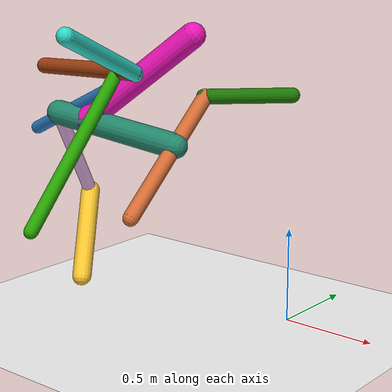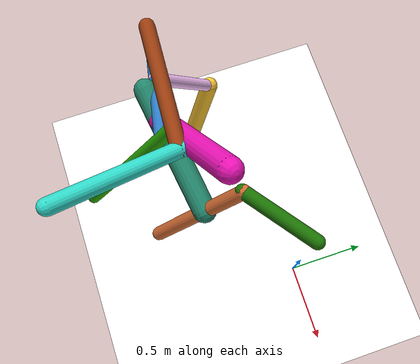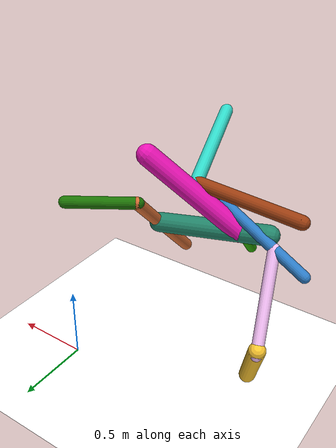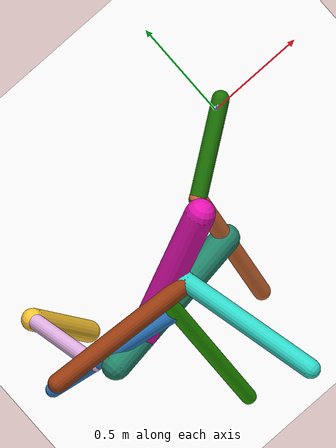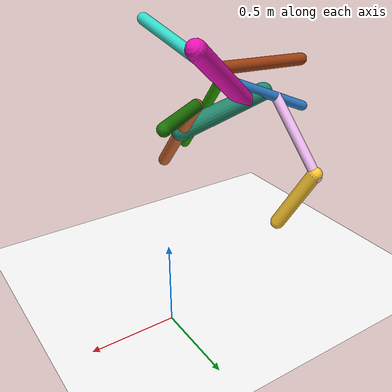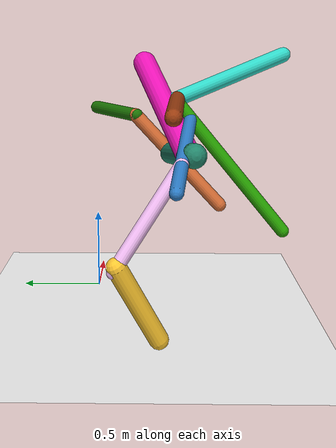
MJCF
<mujoco model="morphology">
  <option timestep="0.01"/>
  <default>
    <default class="/"/>
    <default class="0/"/>
    <default class="0/1/"/>
    <default class="0/1/2/"/>
    <default class="0/1/2/3/"/>
    <default class="0/1/2/3/4/"/>
    <default class="0/1/2/3/4/5/"/>
    <default class="0/1/2/3/4/5/6/"/>
    <default class="0/1/2/3/4/5/6/7/"/>
    <default class="0/1/2/3/4/5/6/7/8/"/>
    <default class="0/1/2/3/4/5/6/7/8/9/"/>
  </default>
  <asset>
    <texture name="texplane" type="2d" builtin="checker" rgb1="0.10000000000000001 0.20000000000000001 0.29999999999999999" rgb2="0.20000000000000001 0.29999999999999999 0.40000000000000002" width="300" height="300"/>
    <material name="MatPlane" class="/" texture="texplane" texrepeat="20 20" specular="1" shininess="1" reflectance="0.5"/>
  </asset>
  <worldbody>
    <light name="//unnamed_light_0" class="/" directional="true" pos="0 0 1.5" dir="0 0 -1.3" cutoff="100" exponent="1" diffuse="1 1 1" specular="0.10000000000000001 0.10000000000000001 0.10000000000000001"/>
    <geom name="ground" class="/" type="plane" size="15 15 0.5" material="MatPlane" rgba="1 1 1 1"/>
    <site name="body" class="/" size="9.9999999999999995e-07 9.9999999999999995e-07 9.9999999999999995e-07" pos="0 0 1.2006227731704713"/>
    <body pos="0 0 1.2006227731704713" name="0/">
      <freejoint name="0/"/>
      <geom name="0/geom" class="0/" type="capsule" contype="1" conaffinity="1" condim="3" size="0.038940530010809368" rgba="0.1086821345204475 0.44800776809167353 0.017469038524819624 1" friction="0.59999999999999998 0.10000000000000001 0.10000000000000001" fromto="0 0 0 -0.35953545124974301 -0.26066402631519042 -0.011150129195560909"/>
      <site name="0/end0" class="0/" size="0.0050000000000000001" pos="-0.35953545124974301 -0.26066402631519042 -0.011150129195560909"/>
      <site name="0/attach1" class="0/" size="9.9999999999999995e-07 9.9999999999999995e-07 9.9999999999999995e-07" pos="-0.35404465428446041 -0.25668318592886757 -0.010979845304677039"/>
      <body pos="-0.35404465428446041 -0.25668318592886757 -0.010979845304677039" name="0/1/">
        <geom name="0/1/geom" class="0/1/" type="capsule" contype="1" conaffinity="1" condim="3" size="0.040386864735102945" rgba="0.82363997649118958 0.42053726563186755 0.2005989204442451 1" friction="0.59999999999999998 0.10000000000000001 0.10000000000000001" fromto="0 0 0 -0.052921609416916371 -0.50437031093216522 -0.53550979489500872"/>
        <site name="0/1/end1" class="0/1/" size="0.0050000000000000001" pos="-0.052921609416916371 -0.50437031093216522 -0.53550979489500872"/>
        <site name="0/1/attach2" class="0/1/" size="9.9999999999999995e-07 9.9999999999999995e-07 9.9999999999999995e-07" pos="-0.022098545172379483 -0.21061056575083623 -0.22361352050937991"/>
        <body pos="-0.022098545172379483 -0.21061056575083623 -0.22361352050937991" name="0/1/2/">
          <geom name="0/1/2/geom" class="0/1/2/" type="capsule" contype="1" conaffinity="1" condim="3" size="0.065019214515735113" rgba="0.13396903898127044 0.52017416672401395 0.41690419356597885 1" friction="0.59999999999999998 0.10000000000000001 0.10000000000000001" fromto="0 0 0 -0.71957589130582655 -0.098166388974254781 0.10383452693976958"/>
          <site name="0/1/2/end2" class="0/1/2/" size="0.0050000000000000001" pos="-0.71957589130582655 -0.098166388974254781 0.10383452693976958"/>
          <site name="0/1/2/attach3" class="0/1/2/" size="9.9999999999999995e-07 9.9999999999999995e-07 9.9999999999999995e-07" pos="-0.54248035368803305 -0.074006561440504937 0.078279708339166379"/>
          <body pos="-0.54248035368803305 -0.074006561440504937 0.078279708339166379" name="0/1/2/3/">
            <joint name="0/1/2/3/joint/" class="0/1/2/" type="hinge" axis="0.19477548235660644 -0.67383755976356208 0.71274501367925358" limited="true" range="-39.304901029200281 39.304901029200281"/>
            <geom name="0/1/2/3/geom" class="0/1/2/3/" type="capsule" contype="1" conaffinity="1" condim="3" size="0.065924088626361566" rgba="0.91012678736875641 0.06705919320056275 0.70325421730724658 1" friction="0.59999999999999998 0.10000000000000001 0.10000000000000001" fromto="0 0 0 0.52641179382782299 0.23260334707493391 0.45341986943469159"/>
            <site name="0/1/2/3/end3" class="0/1/2/3/" size="0.0050000000000000001" pos="0.52641179382782299 0.23260334707493391 0.45341986943469159"/>
            <site name="0/1/2/3/attach4" class="0/1/2/3/" size="9.9999999999999995e-07 9.9999999999999995e-07 9.9999999999999995e-07" pos="0.27716041278295178 0.12246769629000942 0.23872952629479832"/>
            <body pos="0.27716041278295178 0.12246769629000942 0.23872952629479832" name="0/1/2/3/4/">
              <joint name="0/1/2/3/4/joint/" class="0/1/2/3/" type="hinge" axis="-0.69554189312107972 0.32794659290048422 0.63927498552540651" limited="true" range="-47.839129866391318 47.839129866391318"/>
              <geom name="0/1/2/3/4/geom" class="0/1/2/3/4/" type="capsule" contype="1" conaffinity="1" condim="3" size="0.042481214520691334" rgba="0.18500733239257094 0.83818178624212336 0.7758031788061297 1" friction="0.59999999999999998 0.10000000000000001 0.10000000000000001" fromto="0 0 0 0.16864851012531146 -0.67477815935355423 0.26469034181615125"/>
              <site name="0/1/2/3/4/end4" class="0/1/2/3/4/" size="0.0050000000000000001" pos="0.16864851012531146 -0.67477815935355423 0.26469034181615125"/>
              <site name="0/1/2/3/4/attach5" class="0/1/2/3/4/" size="9.9999999999999995e-07 9.9999999999999995e-07 9.9999999999999995e-07" pos="0.018555451283167802 -0.074242062699084246 0.029122396272847347"/>
              <body pos="0.018555451283167802 -0.074242062699084246 0.029122396272847347" name="0/1/2/3/4/5/">
                <geom name="0/1/2/3/4/5/geom" class="0/1/2/3/4/5/" type="capsule" contype="1" conaffinity="1" condim="3" size="0.04252038011680552" rgba="0.60623224708339496 0.2403239708005519 0.062996036193933902 1" friction="0.59999999999999998 0.10000000000000001 0.10000000000000001" fromto="0 0 0 -0.69832292784792327 0.041761816360582071 -0.023288239955856938"/>
                <site name="0/1/2/3/4/5/end5" class="0/1/2/3/4/5/" size="0.0050000000000000001" pos="-0.69832292784792327 0.041761816360582071 -0.023288239955856938"/>
                <site name="0/1/2/3/4/5/attach6" class="0/1/2/3/4/5/" size="9.9999999999999995e-07 9.9999999999999995e-07 9.9999999999999995e-07" pos="-0.11778738700956155 0.0070440408437475134 -0.0039280694118200617"/>
                <body pos="-0.11778738700956155 0.0070440408437475134 -0.0039280694118200617" name="0/1/2/3/4/5/6/">
                  <joint name="0/1/2/3/4/5/6/joint/" class="0/1/2/3/4/5/" type="hinge" axis="-3.4694469519536142e-18 0.48703634984431893 0.8733817000202847" limited="true" range="-60.601881447400771 60.601881447400771"/>
                  <geom name="0/1/2/3/4/5/6/geom" class="0/1/2/3/4/5/6/" type="capsule" contype="1" conaffinity="1" condim="3" size="0.036149590727103026" rgba="0.15492161813384175 0.63073858594731091 0.0059380148349840178 1" friction="0.59999999999999998 0.10000000000000001 0.10000000000000001" fromto="0 0 0 -0.024468894413686826 -0.59554082304504474 -0.71672400690042237"/>
                  <site name="0/1/2/3/4/5/6/end6" class="0/1/2/3/4/5/6/" size="0.0050000000000000001" pos="-0.024468894413686826 -0.59554082304504474 -0.71672400690042237"/>
                  <site name="0/1/2/3/4/5/6/attach7" class="0/1/2/3/4/5/6/" size="9.9999999999999995e-07 9.9999999999999995e-07 9.9999999999999995e-07" pos="-0.0030827912080989496 -0.075031097944512723 -0.090298745409198786"/>
                  <body pos="-0.0030827912080989496 -0.075031097944512723 -0.090298745409198786" name="0/1/2/3/4/5/6/7/">
                    <joint name="0/1/2/3/4/5/6/7/joint/" class="0/1/2/3/4/5/6/" type="hinge" axis="-5.5511151231257827e-17 -0.76913310195113427 0.63908862568741298" limited="true" range="-66.167370212590257 66.167370212590257"/>
                    <geom name="0/1/2/3/4/5/6/7/geom" class="0/1/2/3/4/5/6/7/" type="capsule" contype="1" conaffinity="1" condim="3" size="0.035302943245964606" rgba="0.17084768185522115 0.48007707855584014 0.76569240451426768 1" friction="0.59999999999999998 0.10000000000000001 0.10000000000000001" fromto="0 0 0 -0.63534115332758834 0.093876534992322735 -0.27739520921448463"/>
                    <site name="0/1/2/3/4/5/6/7/end7" class="0/1/2/3/4/5/6/7/" size="0.0050000000000000001" pos="-0.63534115332758834 0.093876534992322735 -0.27739520921448463"/>
                    <site name="0/1/2/3/4/5/6/7/attach8" class="0/1/2/3/4/5/6/7/" size="9.9999999999999995e-07 9.9999999999999995e-07 9.9999999999999995e-07" pos="-0.41952248636909056 0.0619876694047359 -0.18316699188621785"/>
                    <body pos="-0.41952248636909056 0.0619876694047359 -0.18316699188621785" name="0/1/2/3/4/5/6/7/8/">
                      <joint name="0/1/2/3/4/5/6/7/8/joint/" class="0/1/2/3/4/5/6/7/" type="hinge" axis="0 0.94722745256815244 0.32056224528357719" limited="true" range="-55.599043005442468 55.599043005442468"/>
                      <geom name="0/1/2/3/4/5/6/7/8/geom" class="0/1/2/3/4/5/6/7/8/" type="capsule" contype="1" conaffinity="1" condim="3" size="0.037377210023024472" rgba="0.96013162381673756 0.75074358907755112 0.96856941851099687 1" friction="0.59999999999999998 0.10000000000000001 0.10000000000000001" fromto="0 0 0 -0.11312666792829007 0.33677816021655027 -0.51815923086694626"/>
                      <site name="0/1/2/3/4/5/6/7/8/end8" class="0/1/2/3/4/5/6/7/8/" size="0.0050000000000000001" pos="-0.11312666792829007 0.33677816021655027 -0.51815923086694626"/>
                      <site name="0/1/2/3/4/5/6/7/8/attach9" class="0/1/2/3/4/5/6/7/8/" size="9.9999999999999995e-07 9.9999999999999995e-07 9.9999999999999995e-07" pos="-0.10825693833904207 0.32228097222495639 -0.495854186577175"/>
                      <body pos="-0.10825693833904207 0.32228097222495639 -0.495854186577175" name="0/1/2/3/4/5/6/7/8/9/">
                        <joint name="0/1/2/3/4/5/6/7/8/9/joint/" class="0/1/2/3/4/5/6/7/8/" type="hinge" axis="-0.98365480951236584 -0.098127851638775521 0.1509772845694019" limited="true" range="-68.885540299807701 68.885540299807701"/>
                        <geom name="0/1/2/3/4/5/6/7/8/9/geom" class="0/1/2/3/4/5/6/7/8/9/" type="capsule" contype="1" conaffinity="1" condim="3" size="0.053497149989515734" rgba="0.98633894292191893 0.77573133650337089 0.18598269949270996 1" friction="0.59999999999999998 0.10000000000000001 0.10000000000000001" fromto="0 0 0 0.13262881239044577 -0.21496745652930183 -0.43891299436665565"/>
                        <site name="0/1/2/3/4/5/6/7/8/9/end9" class="0/1/2/3/4/5/6/7/8/9/" size="0.0050000000000000001" pos="0.13262881239044577 -0.21496745652930183 -0.43891299436665565"/>
                      </body>
                    </body>
                  </body>
                </body>
              </body>
            </body>
          </body>
        </body>
      </body>
      <camera name="0/iso" class="0/" mode="trackcom" pos="-2.2999999999999998 -2.2999999999999998 1" xyaxes="0.45000000000000001 -0.45000000000000001 0 0.29999999999999999 0.14999999999999999 0.93999999999999995"/>
    </body>
  </worldbody>
  <actuator>
    <motor name="0/1/2/3/motor" class="0/1/2/3/" ctrllimited="true" ctrlrange="-1 1" gear="60" joint="0/1/2/3/joint/"/>
    <motor name="0/1/2/3/4/motor" class="0/1/2/3/4/" ctrllimited="true" ctrlrange="-1 1" gear="78" joint="0/1/2/3/4/joint/"/>
    <motor name="0/1/2/3/4/5/6/motor" class="0/1/2/3/4/5/6/" ctrllimited="true" ctrlrange="-1 1" gear="58" joint="0/1/2/3/4/5/6/joint/"/>
    <motor name="0/1/2/3/4/5/6/7/motor" class="0/1/2/3/4/5/6/7/" ctrllimited="true" ctrlrange="-1 1" gear="52" joint="0/1/2/3/4/5/6/7/joint/"/>
    <motor name="0/1/2/3/4/5/6/7/8/motor" class="0/1/2/3/4/5/6/7/8/" ctrllimited="true" ctrlrange="-1 1" gear="79" joint="0/1/2/3/4/5/6/7/8/joint/"/>
    <motor name="0/1/2/3/4/5/6/7/8/9/motor" class="0/1/2/3/4/5/6/7/8/9/" ctrllimited="true" ctrlrange="-1 1" gear="61" joint="0/1/2/3/4/5/6/7/8/9/joint/"/>
  </actuator>
  <sensor>
    <subtreelinvel name="velocity" body="0/"/>
  </sensor>
</mujoco>
